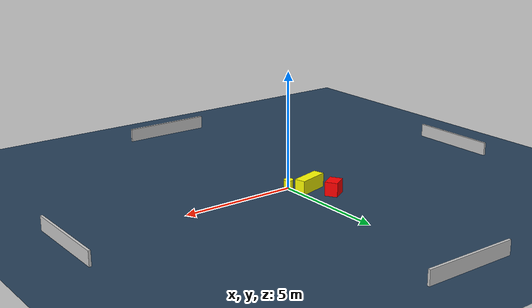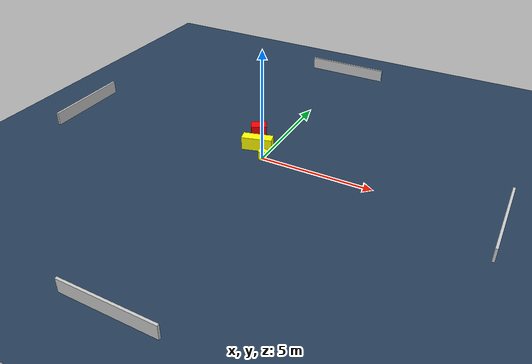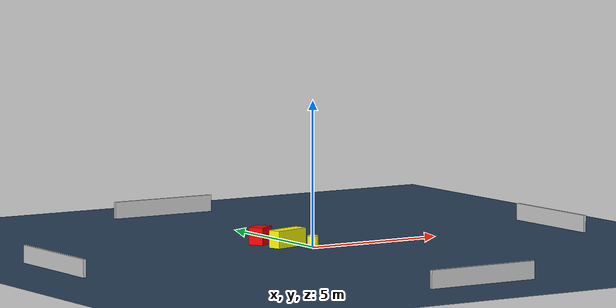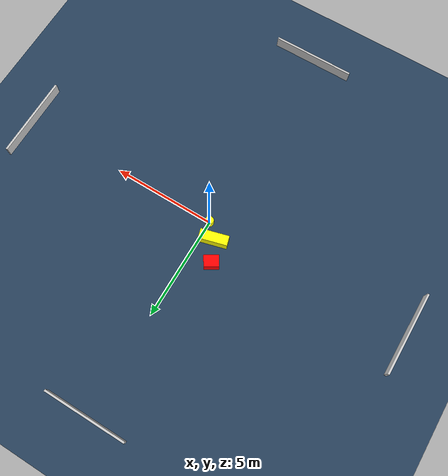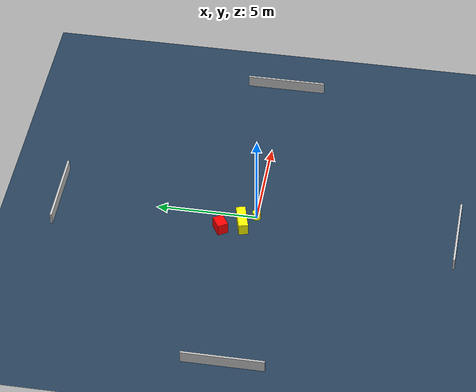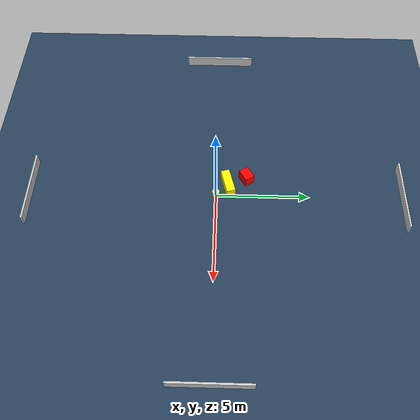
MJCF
<?xml version="1.0" ?>
<mujoco model="generated_environment">
  <option timestep="0.01" integrator="RK4" cone="elliptic"/>
  <default>
    <geom density="1"/>
  </default>
  <asset>
    <texture builtin="gradient" height="3072" name="skybox" rgb1="0.3 0.5 0.7" rgb2="0 0 0" type="skybox" width="512"/>
    <texture builtin="checker" height="300" name="groundplane" rgb1="0.2 0.3 0.4" rgb2="0.1 0.2 0.3" type="2d" width="300"/>
    <material name="groundplane" reflectance="0.2" texrepeat="5 5" texture="groundplane"/>
  </asset>
  <worldbody>
    <light dir="0 0 -1" directional="true" pos="0 0 1.5"/>
    <geom condim="3" friction="0.5 0.005 0.001" material="groundplane" name="floor" pos="0 0 0" size="0 0 0.05" type="plane"/>
    <body name="walls">
      <geom name="wall_1" condim="4" pos="-10.0 0.0 0.3" rgba="0.800000011920929 0.800000011920929 0.800000011920929 1.0" size="0.05 2.0 0.3" type="box"/>
      <geom name="wall_2" condim="4" pos="10.0 0.0 0.3" rgba="0.800000011920929 0.800000011920929 0.800000011920929 1.0" size="0.05 2.0 0.3" type="box"/>
      <geom name="wall_3" condim="4" pos="0.0 -10.0 0.3" rgba="0.800000011920929 0.800000011920929 0.800000011920929 1.0" size="2.0 0.05 0.3" type="box"/>
      <geom name="wall_4" condim="4" pos="0.0 10.0 0.3" rgba="0.800000011920929 0.800000011920929 0.800000011920929 1.0" size="2.0 0.05 0.3" type="box"/>
    </body>
    <body name="robot">
      <joint name="joint_x" type="slide" pos="0 0 0" axis="1 0 0"/>
      <joint name="joint_y" type="slide" pos="0 0 0" axis="0 1 0"/>
      <geom name="robot" type="cylinder" pos="0.0 0.0 0.2" size="0.2 0.2 0.0" mass="5.0" friction="1.0 0.005 0.0001" condim="4" rgba="1.0 1.0 0.0 1.0"/>
    </body>
    <body name="obstacle_1_movable">
      <geom name="obstacle_1_movable" condim="4" pos="-0.6037255609853299 0.6386353876651849 0.3" euler="0 0 15.139026909973708" friction="0.0 0.005 0.001" rgba="1.0 1.0 0.0 1.0" size="0.6790012519802447 0.23682477800795093 0.3" type="box" mass="0.1"/>
      <joint type="free"/>
    </body>
    <body name="obstacle_2_static">
      <geom name="obstacle_2_static" condim="4" pos="-1.0827371205484912 1.6421513978756777 0.3" euler="0 0 31.816392529882556" friction="0.0 0.005 0.001" rgba="1.0 0.0 0.0 1.0" size="0.3518475071180679 0.27097117831064765 0.3" type="box"/>
    </body>
  </worldbody>
  <actuator>
    <motor name="actuator_x" joint="joint_x" gear="1" ctrlrange="-1 1"/>
    <motor name="actuator_y" joint="joint_y" gear="1" ctrlrange="-1 1"/>
  </actuator>
</mujoco>
